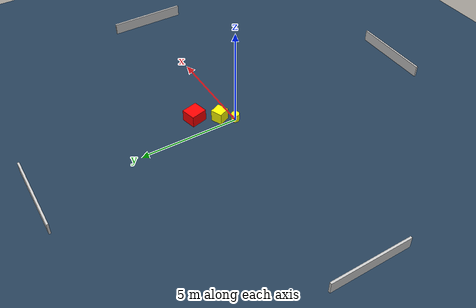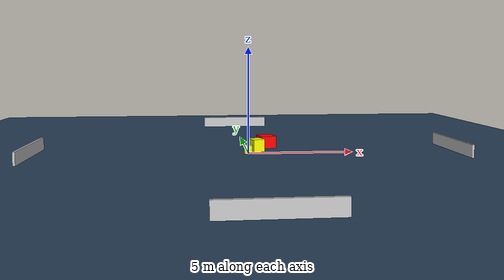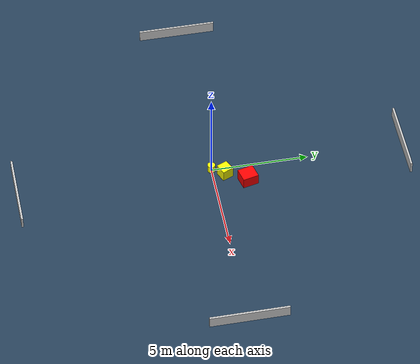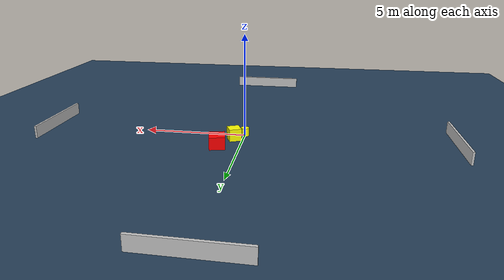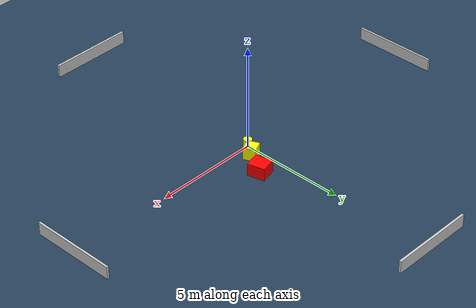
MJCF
<?xml version="1.0" ?>
<mujoco model="generated_environment">
  <option timestep="0.01" integrator="RK4" cone="elliptic"/>
  <default>
    <geom density="1"/>
  </default>
  <asset>
    <texture builtin="gradient" height="3072" name="skybox" rgb1="0.3 0.5 0.7" rgb2="0 0 0" type="skybox" width="512"/>
    <texture builtin="checker" height="300" name="groundplane" rgb1="0.2 0.3 0.4" rgb2="0.1 0.2 0.3" type="2d" width="300"/>
    <material name="groundplane" reflectance="0.2" texrepeat="5 5" texture="groundplane"/>
  </asset>
  <worldbody>
    <light dir="0 0 -1" directional="true" pos="0 0 1.5"/>
    <geom condim="3" friction="0.5 0.005 0.001" material="groundplane" name="floor" pos="0 0 0" size="0 0 0.05" type="plane"/>
    <body name="walls">
      <geom name="wall_1" condim="4" pos="-10.0 0.0 0.3" rgba="0.800000011920929 0.800000011920929 0.800000011920929 1.0" size="0.05 2.0 0.3" type="box"/>
      <geom name="wall_2" condim="4" pos="10.0 0.0 0.3" rgba="0.800000011920929 0.800000011920929 0.800000011920929 1.0" size="0.05 2.0 0.3" type="box"/>
      <geom name="wall_3" condim="4" pos="0.0 -10.0 0.3" rgba="0.800000011920929 0.800000011920929 0.800000011920929 1.0" size="2.0 0.05 0.3" type="box"/>
      <geom name="wall_4" condim="4" pos="0.0 10.0 0.3" rgba="0.800000011920929 0.800000011920929 0.800000011920929 1.0" size="2.0 0.05 0.3" type="box"/>
    </body>
    <body name="robot">
      <joint name="joint_x" type="slide" pos="0 0 0" axis="1 0 0"/>
      <joint name="joint_y" type="slide" pos="0 0 0" axis="0 1 0"/>
      <geom name="robot" type="cylinder" pos="0.0 0.0 0.2" size="0.2 0.2 0.0" mass="5.0" friction="1.0 0.005 0.0001" condim="4" rgba="1.0 1.0 0.0 1.0"/>
    </body>
    <body name="obstacle_1_movable">
      <geom name="obstacle_1_movable" condim="4" pos="0.4350962159039935 0.6227078350653207 0.3" euler="0 0 203.7612783183691" friction="0.0 0.005 0.001" rgba="1.0 1.0 0.0 1.0" size="0.29304903313591785 0.29349779920024177 0.3" type="box" mass="0.1"/>
      <joint type="free"/>
    </body>
    <body name="obstacle_2_static">
      <geom name="obstacle_2_static" condim="4" pos="1.0446193888402064 1.6950161008782452 0.3" euler="0 0 193.65256443686232" friction="0.0 0.005 0.001" rgba="1.0 0.0 0.0 1.0" size="0.37391410331241315 0.4132404517893358 0.3" type="box"/>
    </body>
  </worldbody>
  <actuator>
    <motor name="actuator_x" joint="joint_x" gear="1" ctrlrange="-1 1"/>
    <motor name="actuator_y" joint="joint_y" gear="1" ctrlrange="-1 1"/>
  </actuator>
</mujoco>
